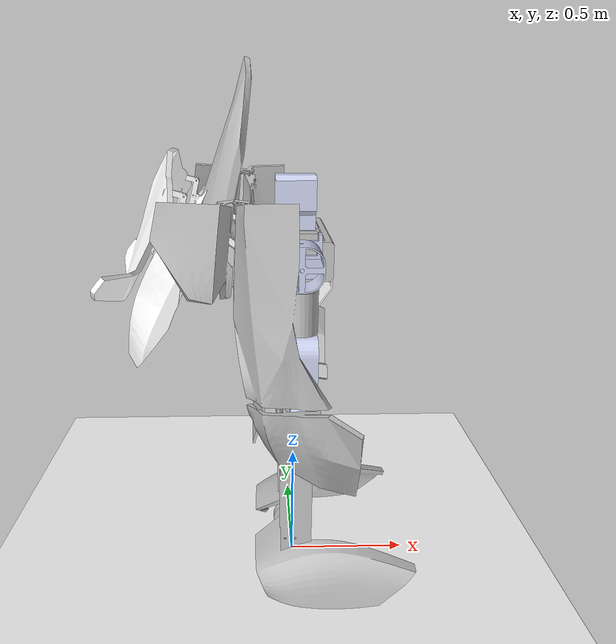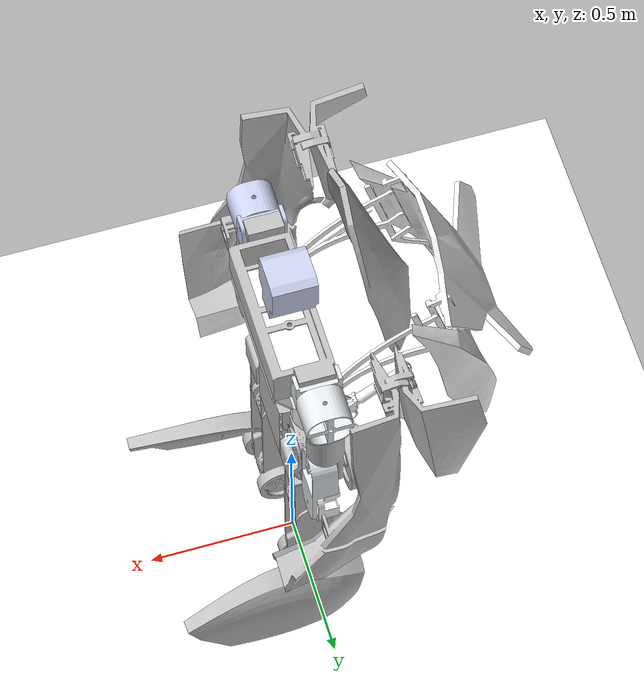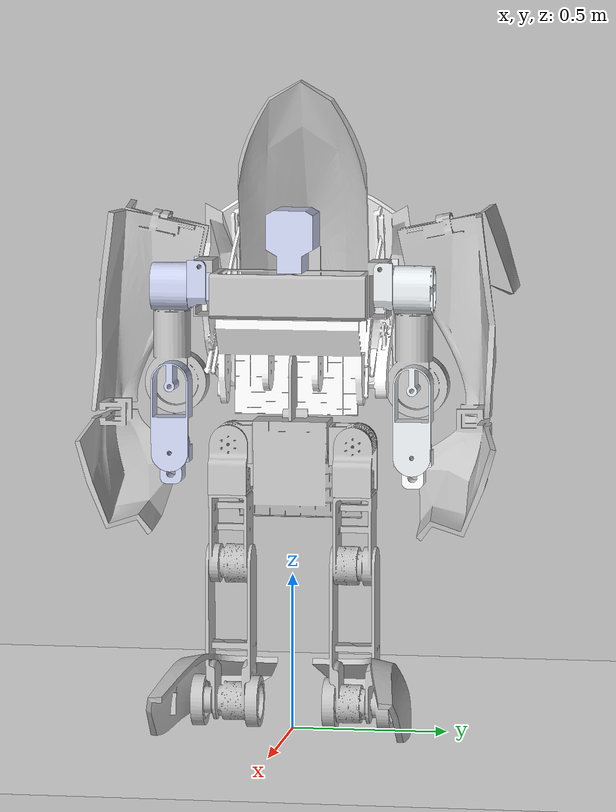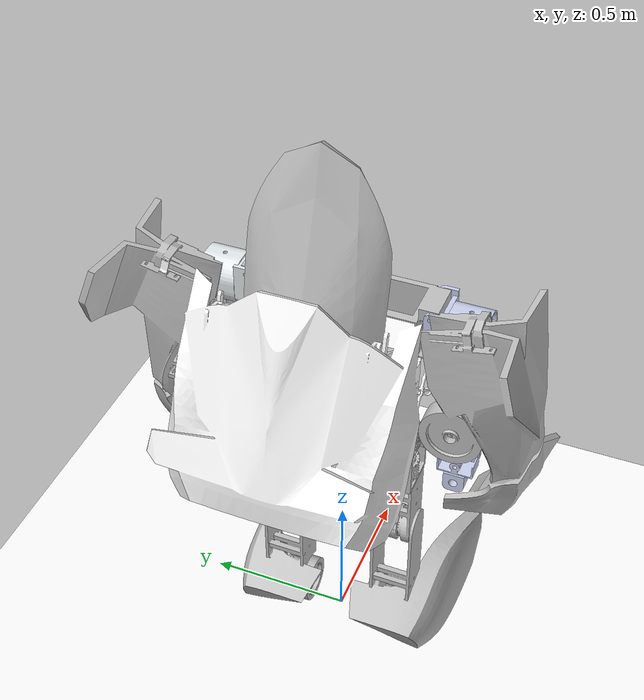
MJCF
<?xml version='1.0' encoding='UTF-8'?>
<mujoco model="new_u20_0420">
  <compiler angle="radian" meshdir="meshes/" autolimits="true" discardvisual="false"/>
  <default>
    <joint damping="0.5" armature="0.01" frictionloss="0.1"/>
    <geom group="3" contype="1" conaffinity="1"/>
  </default>
  <asset>
    <mesh name="base_link" file="base_link.STL"/>
    <mesh name="lleg1_link" file="lleg1_link.STL"/>
    <mesh name="lleg2_link" file="lleg2_link.STL"/>
    <mesh name="lleg3_link" file="lleg3_link.STL"/>
    <mesh name="lleg4_link" file="lleg4_link.STL"/>
    <mesh name="lleg5_link" file="lleg5_link.STL"/>
    <mesh name="rleg1_link" file="rleg1_link.STL"/>
    <mesh name="rleg2_link" file="rleg2_link.STL"/>
    <mesh name="rleg3_link" file="rleg3_link.STL"/>
    <mesh name="rleg4_link" file="rleg4_link.STL"/>
    <mesh name="rleg5_link" file="rleg5_link.STL"/>
    <mesh name="waist1_link" file="waist1_link.STL"/>
    <mesh name="waist2_link" file="waist2_link.STL"/>
    <mesh name="head_link" file="head_link.STL"/>
    <mesh name="larm1_link" file="larm1_link.STL"/>
    <mesh name="larm2_link" file="larm2_link.STL"/>
    <mesh name="larm3_link" file="larm3_link.STL"/>
    <mesh name="larm4_link" file="larm4_link.STL"/>
    <mesh name="larm5_link" file="larm5_link.STL"/>
    <mesh name="larm6_link" file="larm6_link.STL"/>
    <mesh name="rarm1_link" file="rarm1_link.STL"/>
    <mesh name="rarm2_link" file="rarm2_link.STL"/>
    <mesh name="rarm3_link" file="rarm3_link.STL"/>
    <mesh name="rarm4_link" file="rarm4_link.STL"/>
    <mesh name="rarm5_link" file="rarm5_link.STL"/>
    <mesh name="rarm6_link" file="rarm6_link.STL"/>
    <texture type="skybox" builtin="gradient" rgb1="1 1 1" rgb2="1 1 1" width="800" height="800"/>
    <texture type="2d" name="groundplane" builtin="checker" mark="edge" rgb1="1 1 1" rgb2="1 1 1" markrgb="0 0 0" width="300" height="300"/>
    <material name="groundplane" texture="groundplane" texuniform="true" texrepeat="5 5" reflectance="0"/>
    <texture type="skybox" builtin="gradient" rgb1=".4 .5 .6" rgb2="0 0 0" width="100" height="100"/>
    <texture builtin="flat" height="1278" mark="cross" markrgb="1 1 1" name="texgeom" random="0.01" rgb1="0.8 0.6 0.4" rgb2="0.8 0.6 0.4" type="cube" width="127"/>
    <texture name="texplane" builtin="checker" height="512" width="512" rgb1=".2 .3 .4" rgb2=".1 .15 .2" type="2d"/>
    <material name="MatPlane" reflectance="0.5" shininess="0.01" specular="0.1" texrepeat="1 1" texture="texplane" texuniform="true"/>
    <material name="geom" texture="texgeom" texuniform="true"/>
  </asset>
  <worldbody>
    <body name="base_link" pos="0 0 0.924">
      <inertial pos="-0.0094 0 0.0157" mass="7.5069" fullinertia="0.0925 0.0597 0.0648 0 0.0091 0"/>
      <joint name="floating_base_joint" type="free" limited="false" actuatorfrclimited="false"/>
      <geom type="mesh" contype="0" conaffinity="0" group="1" density="0" rgba="0.75294 0.75294 0.75294 1" mesh="base_link"/>
      <geom name="base_link_collision" type="mesh" mesh="base_link" rgba="0.2 0.2 0.2 0.15" priority="1" friction="0.6 0.005 0.0001"/>
      <site name="imu" size="0.01" pos="0 0 0"/>
      <body name="lleg1_link" pos="0 0.12 0">
        <inertial pos="-0.002 0.0686 0" mass="2.9727" fullinertia="0.0041 0.0026 0.0042 0.0002 0 0"/>
        <joint name="lleg1_joint" pos="0 0 0" axis="0 1 0" range="-1.4 1.4" actuatorfrcrange="-200 200"/>
        <geom type="mesh" contype="0" conaffinity="0" group="1" density="0" rgba="0.752941176471 0.752941176471 0.752941176471 1" mesh="lleg1_link"/>
        <body name="lleg2_link" pos="0 0.081 0">
          <inertial pos="0.0005 0 -0.0962" mass="4.1429" fullinertia="0.0137 0.0187 0.0103 0 -0.0005 0"/>
          <joint name="lleg2_joint" pos="0 0 0" axis="1 0 0" range="-0.05 1.4" actuatorfrcrange="-200 200"/>
          <geom type="mesh" contype="0" conaffinity="0" group="1" density="0" rgba="0.752941176471 0.752941176471 0.752941176471 1" mesh="lleg2_link"/>
          <body name="lleg3_link" pos="0.001 0 -0.16">
            <inertial pos="-0.0009 -0.0016 -0.1771" mass="5.0688" fullinertia="0.0448 0.0403 0.0122 0 -0.0004 0.0005"/>
            <joint name="lleg3_joint" pos="0 0 0" axis="0 0 1" range="-0.5 0.5" actuatorfrcrange="-200 200"/>
            <geom type="mesh" contype="0" conaffinity="0" group="1" density="0" rgba="0.752941176471 0.752941176471 0.752941176471 1" mesh="lleg3_link"/>
            <geom name="lleg3_link_collision" pos="0 0 -0.05" type="cylinder" size="0.05 0.04" rgba="0.2 0.2 0.2 1" priority="1" friction="0.6 0.005 0.0001"/>
            <body name="lleg4_link" pos="0 0 -0.231">
              <inertial pos="0.0068 0.0062 -0.3113" mass="6.9416" fullinertia="0.1986 0.1964 0.0537 0.0102 -0.0036 -0.0046"/>
              <joint name="lleg4_joint" pos="0 0 0" axis="0 1 0" range="-0.1 2.3" actuatorfrcrange="-200 200"/>
              <geom type="mesh" contype="0" conaffinity="0" group="1" density="0" rgba="0.752941176471 0.752941176471 0.752941176471 1" mesh="lleg4_link"/>
              <geom name="lleg4_link_collision" pos="0 0 -0.16" type="cylinder" size="0.07 0.18" rgba="0.2 0.2 0.2 1" priority="1" friction="0.6 0.005 0.0001"/>
              <body name="lleg5_link" pos="0 0 -0.45">
                <inertial pos="0 0.017 0" mass="7.7653" fullinertia="0.075 0.0327 0.075 0 0 0"/>
                <geom type="mesh" contype="0" conaffinity="0" group="1" density="0" rgba="0.752941176471 0.752941176471 0.752941176471 1" mesh="lleg5_link"/>
                <geom name="lleg5_link_collision" pos="0 0.012763 0.000106" quat="0.70710679066 0.707106771713 0 0" type="cylinder" size="0.085 0.11" rgba="0.2 0.2 0.2 1" priority="1" friction="0.6 0.005 0.0001"/>
              </body>
            </body>
          </body>
        </body>
      </body>
      <body name="rleg1_link" pos="0 -0.12 0">
        <inertial pos="-0.002 -0.0686 0" mass="2.9727" fullinertia="0.0093 0.0065 0.0082 -0.0002 0 0"/>
        <joint name="rleg1_joint" pos="0 0 0" axis="0 1 0" range="-1.4 1.4" actuatorfrcrange="-200 200"/>
        <geom type="mesh" contype="0" conaffinity="0" group="1" density="0" rgba="0.752941176471 0.752941176471 0.752941176471 1" mesh="rleg1_link"/>
        <body name="rleg2_link" pos="0 -0.081 0">
          <inertial pos="0.0005 0 -0.0962" mass="4.1429" fullinertia="0.0177 0.0227 0.0155 0 -0.0005 0"/>
          <joint name="rleg2_joint" pos="0 0 0" axis="1 0 0" range="-1.4 0.05" actuatorfrcrange="-200 200"/>
          <geom type="mesh" contype="0" conaffinity="0" group="1" density="0" rgba="0.752941176471 0.752941176471 0.752941176471 1" mesh="rleg2_link"/>
          <body name="rleg3_link" pos="0.001 0 -0.16">
            <inertial pos="-0.0009 0.0016 -0.1771" mass="5.0688" fullinertia="0.0488 0.0455 0.0162 0 -0.0004 -0.0005"/>
            <joint name="rleg3_joint" pos="0 0 0" axis="0 0 1" range="-0.5 0.5" actuatorfrcrange="-200 200"/>
            <geom type="mesh" contype="0" conaffinity="0" group="1" density="0" rgba="0.752941176471 0.752941176471 0.752941176471 1" mesh="rleg3_link"/>
            <geom name="rleg3_link_collision" pos="0 0 -0.05" type="cylinder" size="0.05 0.04" rgba="0.2 0.2 0.2 1" priority="1" friction="0.6 0.005 0.0001"/>
            <body name="rleg4_link" pos="0 0 -0.231">
              <inertial pos="0.0068 -0.0062 -0.3113" mass="6.9416" fullinertia="0.2025 0.2016 0.0577 -0.0102 -0.0036 0.0046"/>
              <joint name="rleg4_joint" pos="0 0 0" axis="0 1 0" range="-0.1 2.3" actuatorfrcrange="-200 200"/>
              <geom type="mesh" contype="0" conaffinity="0" group="1" density="0" rgba="0.752941176471 0.752941176471 0.752941176471 1" mesh="rleg4_link"/>
              <geom name="rleg4_link_collision" pos="0 0 -0.16" type="cylinder" size="0.07 0.18" rgba="0.2 0.2 0.2 1" priority="1" friction="0.6 0.005 0.0001"/>
              <body name="rleg5_link" pos="0 0 -0.45">
                <inertial pos="0 -0.017 0" mass="7.7653" fullinertia="0.075 0.0327 0.075 0 0 0"/>
                <geom type="mesh" contype="0" conaffinity="0" group="1" density="0" rgba="0.752941176471 0.752941176471 0.752941176471 1" mesh="rleg5_link"/>
                <geom name="rleg5_link_collision" pos="0 -0.0127632 0.0001056" quat="0.70710679066 0.707106771713 0 0" type="cylinder" size="0.085 0.11" rgba="0.2 0.2 0.2 1" priority="1" friction="0.6 0.005 0.0001"/>
              </body>
            </body>
          </body>
        </body>
      </body>
      <body name="waist1_link" pos="0 0 0.23">
        <inertial pos="-0.1579 -0.0033 0.142" mass="11.8463" fullinertia="0.7791 0.9723 0.992 0.0086 -0.195 -0.0029"/>
        <joint name="waist1_joint" type="hinge" pos="0 0 0" axis="0 1 0" range="-1.57079632679 1.57079632679" actuatorfrcrange="-200 200"/>
        <geom type="mesh" contype="0" conaffinity="0" group="1" density="0" rgba="1 1 1 1" mesh="waist1_link"/>
        <geom name="waist1_link_collision" type="mesh" mesh="waist1_link" rgba="0.2 0.2 0.2 0.15" priority="1" friction="0.6 0.005 0.0001"/>
        <body name="waist2_link" pos="0 0 0.18">
          <inertial pos="-0.0016 0 0.1227" mass="6.6034" fullinertia="0.3998 0.1988 0.4139 0 -0.0513 0"/>
          <joint name="waist2_joint" type="hinge" pos="0 0 0" axis="0 0 1" range="-1.57079632679 1.57079632679" actuatorfrcrange="-200 200"/>
          <geom type="mesh" contype="0" conaffinity="0" group="1" density="0" rgba="0.752941176471 0.752941176471 0.752941176471 1" mesh="waist2_link"/>
          <geom name="waist2_link_collision" type="mesh" mesh="waist2_link" rgba="0.2 0.2 0.2 0.15" priority="1" friction="0.6 0.005 0.0001"/>
          <body name="head_link" pos="0 0 0.1435">
            <inertial pos="0.0313 0 0.1081" mass="0.5958" fullinertia="0.0038 0.0037 0.0027 0 0.0001 0"/>
            <joint name="head_joint" type="hinge" pos="0 0 0" axis="0 0 1" range="-1.57079632679 1.57079632679" actuatorfrcrange="-200 200"/>
            <geom type="mesh" contype="0" conaffinity="0" group="1" density="0" rgba="0.796078431373 0.823529411765 0.937254901961 1" mesh="head_link"/>
            <geom name="head_link_collision" type="mesh" mesh="head_link" rgba="0.2 0.2 0.2 0.15" priority="1" friction="0.6 0.005 0.0001"/>
          </body>
          <body name="larm1_link" pos="0 0.29 0.1615">
            <inertial pos="0 0.02 -0.0703" mass="1.3714" fullinertia="0.0023 0.0056 0.0039 0 0 -0.0001"/>
            <joint name="larm1_joint" pos="0 0 0" axis="1 0 0" range="0 2.6"/>
            <geom type="mesh" contype="0" conaffinity="0" group="1" density="0" rgba="0.898039215686 0.917647058824 0.929411764706 1" mesh="larm1_link"/>
            <geom name="larm1_link_collision" type="mesh" mesh="larm1_link" rgba="0.2 0.2 0.2 0.15" priority="1" friction="0.6 0.005 0.0001"/>
            <body name="larm2_link" pos="0 0.101 -0.07">
              <inertial pos="0 0 0" mass="2.3741" fullinertia="0.0066 0.0074 0.0067 0 0 0"/>
              <joint name="larm2_joint" pos="0 0 0" axis="0 1 0" range="-1.57 0.8"/>
              <geom type="mesh" contype="0" conaffinity="0" group="1" density="0" rgba="0.898039215686 0.917647058824 0.929411764706 1" mesh="larm2_link"/>
              <geom name="larm2_link_collision" type="mesh" mesh="larm2_link" rgba="0.2 0.2 0.2 0.15" priority="1" friction="0.6 0.005 0.0001"/>
              <body name="larm3_link" pos="0 0 -0.0775">
                <inertial pos="-0.0902 0.0496 -0.137" mass="8.4889" fullinertia="0.4734 0.4767 0.1299 -0.0063 -0.1091 0.0149"/>
                <joint name="larm3_joint" pos="0 0 0" axis="0 0 1" range="-3.14 3.14"/>
                <geom type="mesh" contype="0" conaffinity="0" group="1" density="0" rgba="0.752941176471 0.752941176471 0.752941176471 1" mesh="larm3_link"/>
                <geom name="larm3_link_collision" type="mesh" mesh="larm3_link" rgba="0.2 0.2 0.2 0.15" priority="1" friction="0.6 0.005 0.0001"/>
                <body name="larm4_link" pos="0 0 -0.24">
                  <inertial pos="0.0318 0 -0.08" mass="1.7898" fullinertia="0.0214 0.0203 0.0034 0 -0.0027 0"/>
                  <joint name="larm4_joint" pos="0 0 0" axis="1 0 0" range="-1.57 1.57"/>
                  <geom type="mesh" contype="0" conaffinity="0" group="1" density="0" rgba="0.898039215686 0.917647058824 0.929411764706 1" mesh="larm4_link"/>
                  <geom name="larm4_link_collision" type="mesh" mesh="larm4_link" rgba="0.2 0.2 0.2 0.15" priority="1" friction="0.6 0.005 0.0001"/>
                  <body name="larm5_link" pos="0 0 -0.215">
                    <inertial pos="-0.0026 0 0.0447" mass="1.1747" fullinertia="0.003 0.0026 0.0014 0 -0.0002 0"/>
                    <joint name="larm5_joint" pos="0 0 0" axis="1 0 0" range="-3.14 3.14"/>
                    <geom type="mesh" contype="0" conaffinity="0" group="1" density="0" rgba="1 1 1 1" mesh="larm5_link"/>
                    <geom name="larm5_link_collision" type="mesh" mesh="larm5_link" rgba="0.2 0.2 0.2 0.15" priority="1" friction="0.6 0.005 0.0001"/>
                    <body name="larm6_link" pos="-0.0005 0 -0.032">
                      <inertial pos="0 0 -0.034" mass="0.6447" fullinertia="0.0006 0.0006 0.0006 0 0 0"/>
                      <joint name="larm6_joint" pos="0 0 0" axis="0 0 1" range="-3.14 3.14"/>
                      <geom type="mesh" contype="0" conaffinity="0" group="1" density="0" rgba="1 1 1 1" mesh="larm6_link"/>
                      <geom name="larm6_link_collision" type="mesh" mesh="larm6_link" rgba="0.2 0.2 0.2 0.15" priority="1" friction="0.6 0.005 0.0001"/>
                    </body>
                  </body>
                </body>
              </body>
            </body>
          </body>
          <body name="rarm1_link" pos="0 -0.29 0.1615">
            <inertial pos="0 -0.02 -0.0703" mass="1.3714" fullinertia="0.0023 0.0056 0.0039 0 0 0.0001"/>
            <joint name="rarm1_joint" pos="0 0 0" axis="1 0 0" range="-2.6 0"/>
            <geom type="mesh" contype="0" conaffinity="0" group="1" density="0" rgba="0.792156862745 0.819607843137 0.933333333333 1" mesh="rarm1_link"/>
            <geom name="rarm1_link_collision" type="mesh" mesh="rarm1_link" rgba="0.2 0.2 0.2 0.15" priority="1" friction="0.6 0.005 0.0001"/>
            <body name="rarm2_link" pos="0 -0.101 -0.07">
              <inertial pos="0 0 0" mass="2.3741" fullinertia="0.0066 0.0074 0.0067 0 0 0"/>
              <joint name="rarm2_joint" pos="0 0 0" axis="0 1 0" range="-1.57 0.8"/>
              <geom type="mesh" contype="0" conaffinity="0" group="1" density="0" rgba="0.792156862745 0.819607843137 0.933333333333 1" mesh="rarm2_link"/>
              <geom name="rarm2_link_collision" type="mesh" mesh="rarm2_link" rgba="0.2 0.2 0.2 0.15" priority="1" friction="0.6 0.005 0.0001"/>
              <body name="rarm3_link" pos="0 0 -0.0775">
                <inertial pos="-0.0902 -0.0496 -0.137" mass="8.4889" fullinertia="0.4734 0.4767 0.1299 0.0063 -0.1091 -0.0149"/>
                <joint name="rarm3_joint" pos="0 0 0" axis="0 0 1" range="-3.14 3.14"/>
                <geom type="mesh" contype="0" conaffinity="0" group="1" density="0" rgba="0.752941176471 0.752941176471 0.752941176471 1" mesh="rarm3_link"/>
                <geom name="rarm3_link_collision" type="mesh" mesh="rarm3_link" rgba="0.2 0.2 0.2 0.15" priority="1" friction="0.6 0.005 0.0001"/>
                <body name="rarm4_link" pos="0 0 -0.24">
                  <inertial pos="0.0318 0 -0.08" mass="1.7898" fullinertia="0.0214 0.0203 0.0034 0 -0.0027 0"/>
                  <joint name="rarm4_joint" pos="0 0 0" axis="1 0 0" range="-1.57 1.57"/>
                  <geom type="mesh" contype="0" conaffinity="0" group="1" density="0" rgba="0.792156862745 0.819607843137 0.933333333333 1" mesh="rarm4_link"/>
                  <geom name="rarm4_link_collision" type="mesh" mesh="rarm4_link" rgba="0.2 0.2 0.2 0.15" priority="1" friction="0.6 0.005 0.0001"/>
                  <body name="rarm5_link" pos="0 0 -0.215">
                    <inertial pos="-0.0026 0 0.0447" mass="1.1747" fullinertia="0.003 0.0026 0.0014 0 -0.0002 0"/>
                    <joint name="rarm5_joint" pos="0 0 0" axis="1 0 0" range="-3.14 3.14"/>
                    <geom type="mesh" contype="0" conaffinity="0" group="1" density="0" rgba="0.792156862745 0.819607843137 0.933333333333 1" mesh="rarm5_link"/>
                    <geom name="rarm5_link_collision" type="mesh" mesh="rarm5_link" rgba="0.2 0.2 0.2 0.15" priority="1" friction="0.6 0.005 0.0001"/>
                    <body name="rarm6_link" pos="-0.0005 0 -0.032">
                      <inertial pos="0 0 -0.034" mass="0.6447" fullinertia="0.0006 0.0006 0.0006 0 0 0"/>
                      <joint name="rarm6_joint" pos="0 0 0" axis="0 0 1" range="-3.14 3.14"/>
                      <geom type="mesh" contype="0" conaffinity="0" group="1" density="0" rgba="0.792156862745 0.819607843137 0.933333333333 1" mesh="rarm6_link"/>
                      <geom name="rarm6_link_collision" type="mesh" mesh="rarm6_link" rgba="0.2 0.2 0.2 0.15" priority="1" friction="0.6 0.005 0.0001"/>
                    </body>
                  </body>
                </body>
              </body>
            </body>
          </body>
        </body>
      </body>
    </body>
    <geom name="floor" size="0 0 0.01" type="plane" material="groundplane" group="0" contype="1" conaffinity="0" priority="1" friction="0.6" condim="3"/>
    <light diffuse=".5 .5 .5" pos="-3 -3 5" dir="3 3 -5" castshadow="true"/>
  </worldbody>
  <sensor>
    <framequat name="orientation" objtype="site" objname="imu"/>
    <framepos name="position" objtype="site" objname="imu"/>
    <gyro name="imu_ang_vel" site="imu"/>
    <velocimeter name="imu_lin_vel" site="imu"/>
    <accelerometer name="imu_lin_acc" site="imu"/>
    <subtreeangmom name="root_angmom" body="base_link"/>
  </sensor>

  <!-- setup scene -->
  <statistic center="1.0 0.7 1.0" extent="0.8"/>
  <visual>
    <headlight diffuse="0.6 0.6 0.6" ambient="0.1 0.1 0.1" specular="0.9 0.9 0.9"/>
    <rgba haze="0.15 0.25 0.35 1"/>
    <global azimuth="-140" elevation="-20" offwidth="2080" offheight="1170"/>
  </visual>
</mujoco>
